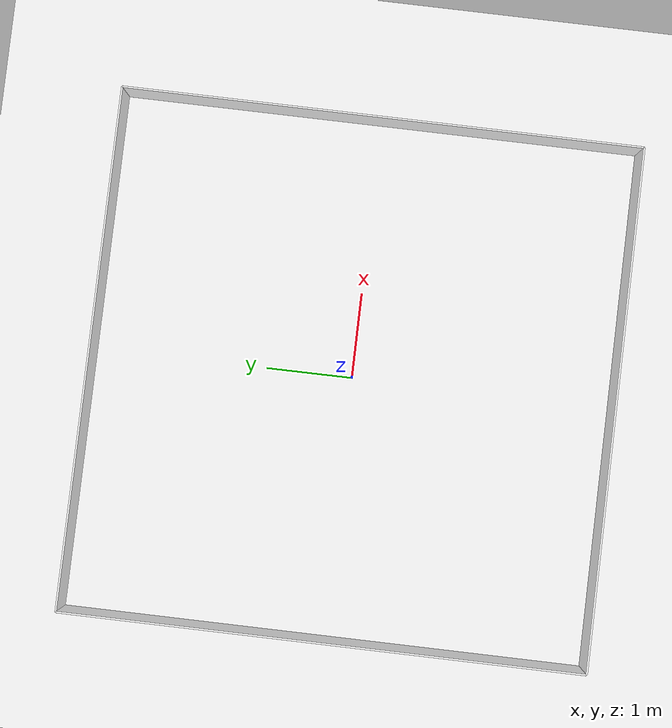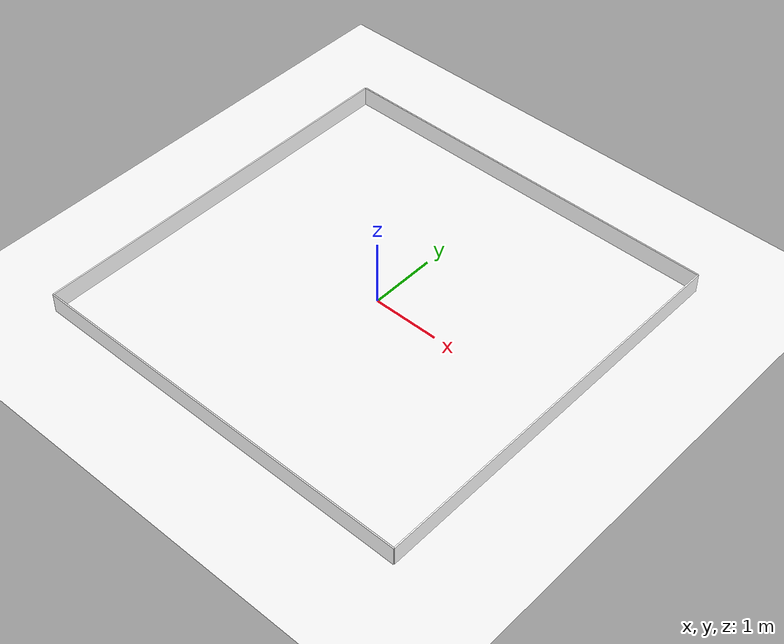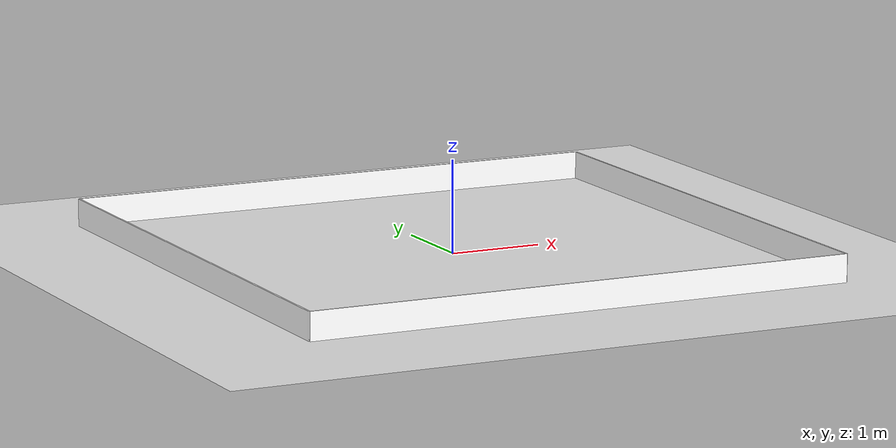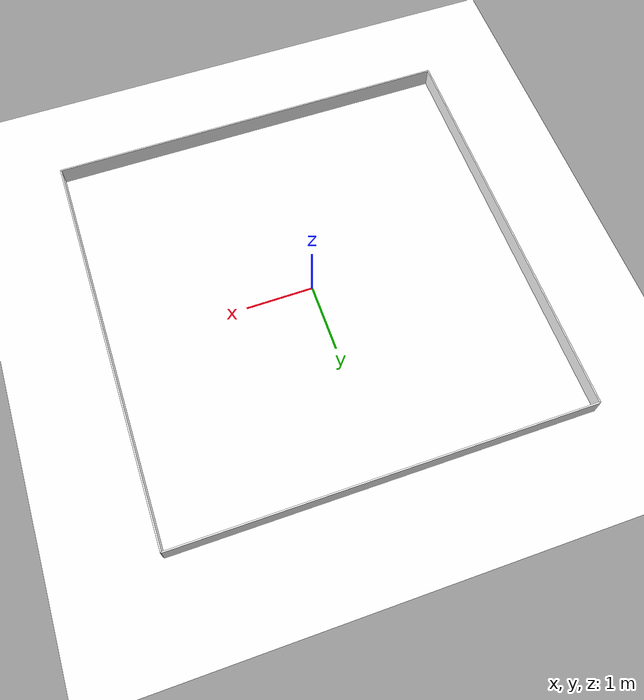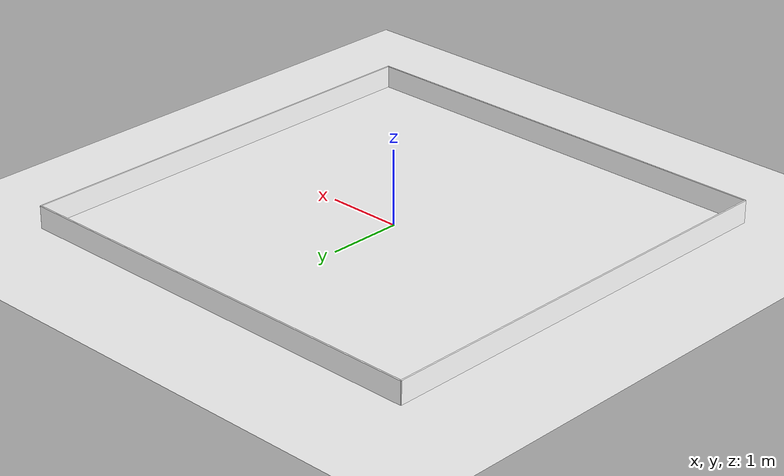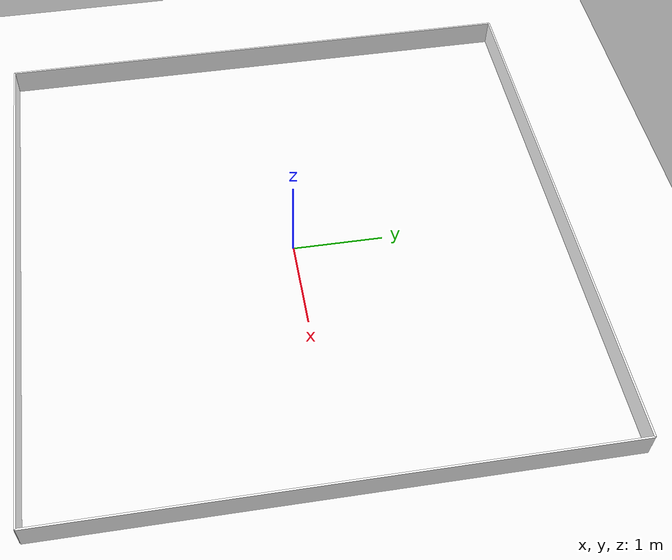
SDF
<?xml version="1.0"?>
<sdf version="1.6">
  <world name="default">
  <plugin
    filename="gz-sim-physics-system"
    name="gz::sim::systems::Physics">
  </plugin>
  <plugin
    filename="gz-sim-user-commands-system"
    name="gz::sim::systems::UserCommands">
  </plugin>
  <plugin
    filename="gz-sim-scene-broadcaster-system"
    name="gz::sim::systems::SceneBroadcaster">
  </plugin>
  <plugin
    filename="gz-sim-sensors-system"
    name="gz::sim::systems::Sensors">
    <render_engine>ogre2</render_engine>
  </plugin>
  <plugin
    filename="gz-sim-imu-system"
    name="gz::sim::systems::Imu">
  </plugin>

    <!-- Fuel経由(ネット接続必須)のSunモデルではなく、directional lightを自前定義する。
         shadowsはsceneで無効化済みなのでcast_shadowsもfalseにしておく。 -->
    <light type="directional" name="sun">
      <cast_shadows>false</cast_shadows>
      <pose>0 0 10 0 0 0</pose>
      <diffuse>0.8 0.8 0.8 1</diffuse>
      <specular>0.2 0.2 0.2 1</specular>
      <direction>-0.5 0.1 -0.9</direction>
    </light>

    <!-- タスク1で生成したコーステクスチャを貼ったground plane(world実寸6m×6mに合わせる) -->
    <model name="ground_plane">
      <static>true</static>
      <link name="link">
        <collision name="collision">
          <geometry>
            <plane>
              <normal>0 0 1</normal>
              <size>6 6</size>
            </plane>
          </geometry>
        </collision>
        <visual name="visual">
          <geometry>
            <plane>
              <normal>0 0 1</normal>
              <size>6 6</size>
            </plane>
          </geometry>
          <material>
            <!-- diffuse/ambientの既定値が黒のため、albedo_mapのテクスチャ色に黒が掛かって
                 常に真っ黒になっていた。白にしてテクスチャ色をそのまま出す。 -->
            <ambient>1 1 1 1</ambient>
            <diffuse>1 1 1 1</diffuse>
            <!-- PBRのalbedo_map等は相対パスが正しく解決されない既知の不具合があるため
                 絶対パスで指定する(gazebosim/gz-sim#286)。 -->
            <pbr>
              <metal>
                <albedo_map>/workspace/install/amr_bringup/share/amr_bringup/textures/ground_place.png</albedo_map>
                <metalness>0.0</metalness>
                <roughness>1.0</roughness>
              </metal>
            </pbr>
          </material>
        </visual>
      </link>
    </model>

    <!-- 境界壁(衝突判定あり)。ground planeの6m×6m外周を囲む -->
    <model name="wall_north">
      <static>true</static>
      <pose>0 3.0 0.15 0 0 0</pose>
      <link name="link">
        <collision name="collision">
          <geometry><box><size>6 0.02 0.3</size></box></geometry>
        </collision>
        <visual name="visual">
          <geometry><box><size>6 0.02 0.3</size></box></geometry>
          <material><ambient>1 1 1 1</ambient><diffuse>1 1 1 1</diffuse></material>
        </visual>
      </link>
    </model>
    <model name="wall_south">
      <static>true</static>
      <pose>0 -3.0 0.15 0 0 0</pose>
      <link name="link">
        <collision name="collision">
          <geometry><box><size>6 0.02 0.3</size></box></geometry>
        </collision>
        <visual name="visual">
          <geometry><box><size>6 0.02 0.3</size></box></geometry>
          <material><ambient>1 1 1 1</ambient><diffuse>1 1 1 1</diffuse></material>
        </visual>
      </link>
    </model>
    <model name="wall_east">
      <static>true</static>
      <pose>3.0 0 0.15 0 0 0</pose>
      <link name="link">
        <collision name="collision">
          <geometry><box><size>0.02 6 0.3</size></box></geometry>
        </collision>
        <visual name="visual">
          <geometry><box><size>0.02 6 0.3</size></box></geometry>
          <material><ambient>1 1 1 1</ambient><diffuse>1 1 1 1</diffuse></material>
        </visual>
      </link>
    </model>
    <model name="wall_west">
      <static>true</static>
      <pose>-3.0 0 0.15 0 0 0</pose>
      <link name="link">
        <collision name="collision">
          <geometry><box><size>0.02 6 0.3</size></box></geometry>
        </collision>
        <visual name="visual">
          <geometry><box><size>0.02 6 0.3</size></box></geometry>
          <material><ambient>1 1 1 1</ambient><diffuse>1 1 1 1</diffuse></material>
        </visual>
      </link>
    </model>

    <scene>
      <shadows>false</shadows>
    </scene>

    <gui fullscreen='0'>
      <camera name='user_camera'>
        <pose frame=''>0.319654 -0.235002 18.6 0 1.5138 0.009599</pose>
        <view_controller>orbit</view_controller>
        <projection_type>perspective</projection_type>
      </camera>
    </gui>

    <physics type="ode">
      <real_time_update_rate>1000.0</real_time_update_rate>
      <max_step_size>0.001</max_step_size>
      <real_time_factor>1</real_time_factor>
      <ode>
        <solver>
          <type>quick</type>
          <iters>150</iters>
          <precon_iters>0</precon_iters>
          <sor>1.400000</sor>
          <use_dynamic_moi_rescaling>1</use_dynamic_moi_rescaling>
        </solver>
        <constraints>
          <cfm>0.00001</cfm>
          <erp>0.2</erp>
          <contact_max_correcting_vel>2000.000000</contact_max_correcting_vel>
          <contact_surface_layer>0.01000</contact_surface_layer>
        </constraints>
      </ode>
    </physics>

  </world>
</sdf>
